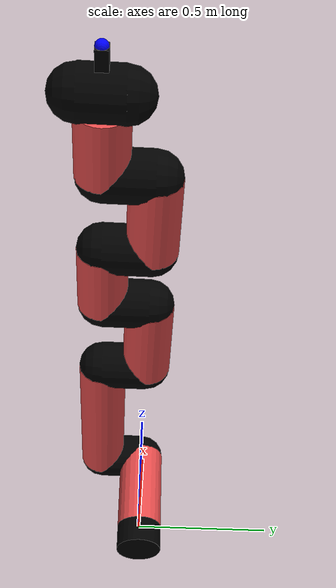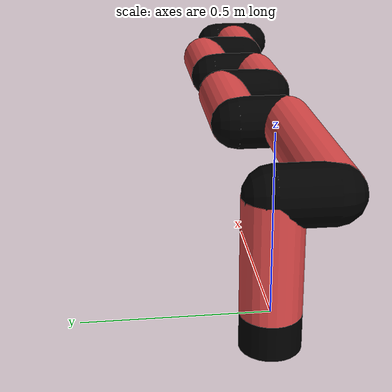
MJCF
<mujoco model="manipulator">
		<compiler angle="degree" coordinate="local" inertiafromgeom="auto" meshdir="meshes/"/>
		<option gravity="0 0 0" integrator="RK4" iterations="30" timestep="0.01"/>

		<default>
		<joint armature="1" limited="true" stiffness="10" damping="15" frictionloss="5.0"/>
		<geom conaffinity="1" condim="3" contype="1" friction=".5 .1 .1" margin="0.002"/>
		<motor ctrllimited="true"/>
		<position ctrllimited="true"/>
		</default>

		<asset>
		<texture builtin="gradient" height="100" rgb1="1.0 1.0 1.0" rgb2="1.0 1.0 1.0" type="skybox" width="100"/>
		<texture builtin="flat" height="32" name="arm_tex" rgb1="0.9 0.3 0.3" type="2d" width="32"/>
		<texture builtin="flat" height="32" name="gripper_tex" rgb1="0.0 0.0 0.0" type="cube" width="32"/>

		<material name="arm_mat" shininess="0.1" specular="0.1" texture="arm_tex"/>
		<material name="gripper_mat" shininess="1" specular="1" texture="gripper_tex"/>
		</asset>

		<worldbody>
		<light cutoff="45" diffuse=".8 .8 .8" dir="0 0.16 -1" directional="false" name="light" pos="0 -2.0 8.0" specular="0.3 0.3 0.3"/>

		<body name="base_link" pos="0 0 -0.1">
		<geom fromto="0 0 0 0 0 0.1" material="arm_mat" name="base_link" rgba="0.0 0.0 0.0 1" size="0.085" type="cylinder"/>
		</body>

		<body name="l1" pos="0 0 0">
<geom fromto="0 0 0 0 0 0.33" material="arm_mat" name="l1" rgba="0.9 0.3 0.3 1" size="0.085" type="cylinder"/>
<geom fromto="0 0 0.33 0 -0.16 0.33" material="arm_mat" name="l1_ex" rgba="0.0 0.0 0.0 1" size="0.085" type="capsule"/>
<joint axis="0 0 1" name="j1" pos="0 0 0" range="-90 90" damping="32.52" frictionloss="8.76"/>

<body name="l2" pos="0 -0.16 0.33">
<geom fromto="0 0 0 0.62 0 0" material="arm_mat" name="l2" rgba="0.9 0.3 0.3 1" size="0.085" type="cylinder"/>
<geom fromto="0.62 0 0 0.62 0.16 0" material="arm_mat" name="l2_ex" rgba="0.0 0.0 0.0 1" size="0.085" type="capsule"/>
<joint axis="-0.03 1.24 0.09" name="j2" pos="0 0 0" range="-90 60" damping="34.62" frictionloss="10.25"/>

<body name="l3" pos="0.62 0.16 0">
<geom fromto="0 0 0 0.35 0 0" material="arm_mat" name="l3" rgba="0.9 0.3 0.3 1" size="0.085" type="cylinder"/>
<geom fromto="0.35 0 0 0.35 -0.16 0" material="arm_mat" name="l3_ex" rgba="0.0 0.0 0.0 1" size="0.085" type="capsule"/>
<joint axis="-0.15 0.96 -0.08" name="j3" pos="0 0 0" range="-30 60" damping="29.3" frictionloss="9.48"/>

<body name="l4" pos="0.35 -0.16 0">
<geom fromto="0 0 0 0.26 0 0" material="arm_mat" name="l4" rgba="0.9 0.3 0.3 1" size="0.085" type="cylinder"/>
<geom fromto="0.26 0 0 0.26 0.16 0" material="arm_mat" name="l4_ex" rgba="0.0 0.0 0.0 1" size="0.085" type="capsule"/>
<joint axis="0.15 1.19 0.2" name="j4" pos="0 0 0" range="-30 60" damping="22.87" frictionloss="10.73"/>

<body name="l5" pos="0.26 0.16 0">
<geom fromto="0 0 0 0.31 0 0" material="arm_mat" name="l5" rgba="0.9 0.3 0.3 1" size="0.085" type="cylinder"/>
<geom fromto="0.31 0 0 0.31 -0.16 0" material="arm_mat" name="l5_ex" rgba="0.0 0.0 0.0 1" size="0.085" type="capsule"/>
<joint axis="0.08 0.89 -0.12" name="j5" pos="0 0 0" range="-30 60" damping="23.43" frictionloss="9.27"/>

<body name="l6" pos="0.31 -0.16 0">
<geom fromto="0 0 0 0.24 0 0" material="arm_mat" name="l6" rgba="0.9 0.3 0.3 1" size="0.085" type="cylinder"/>
<joint axis="0.18 1.01 0.15" name="j6" pos="0 0 0" range="-30 60" damping="26.39" frictionloss="11.64"/>

<body name="gripper" pos="0.24 0 0">
<geom fromto="0.05 -0.07 0 0.05 0.07 0" material="gripper_mat" name="gripper" rgba="0.0 0.0 0.0 1" size="0.085" type="capsule"/><joint axis="1 0 0" name="j7" pos="0 0 0" range="-90 90" damping="15" frictionloss="5.0"/><body name="finger" pos="0.1 0 0">
<geom fromto="0 0.0 0 0.1 0.0 0" material="gripper_mat" name="finger" rgba="0.0 0.0 0.0 1" size="0.020 0.06 0.06" type="box"/>
</body>
<site name="current" pos="0.2 0. 0.0" rgba="0. 0. 1.0 1" size="0.02" type="sphere"/>
</body>
</body>
</body>
</body>
</body>
</body>
</body>
</worldbody>
<actuator>
<motor ctrllimited="true" ctrlrange="-1.0 1.0" joint="j1" gear="62.58"/>
<motor ctrllimited="true" ctrlrange="-1.0 1.0" joint="j2" gear="81.66"/>
<motor ctrllimited="true" ctrlrange="-1.0 1.0" joint="j3" gear="73.55"/>
<motor ctrllimited="true" ctrlrange="-1.0 1.0" joint="j4" gear="76.67"/>
<motor ctrllimited="true" ctrlrange="-1.0 1.0" joint="j5" gear="65.53"/>
<motor ctrllimited="true" ctrlrange="-1.0 1.0" joint="j6" gear="75.91"/>
<motor ctrllimited="true" ctrlrange="-1.0 1.0" joint="j7" gear="80"/>
</actuator>
</mujoco>
